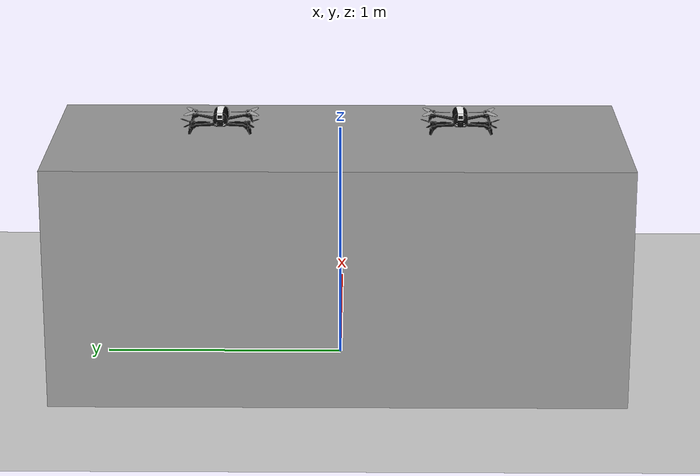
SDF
<sdf version="1.7">
 <world name="default">
  <plugin name="ros_interface_plugin" filename="librotors_gazebo_ros_interface_plugin.so"/>
  <model name="ground_plane">
   <static>1</static>
   <link name="link">
    <collision name="collision">
     <geometry><plane><normal>0 0 1</normal><size>100 100</size></plane></geometry>
     <surface>
      <contact><collide_bitmask>65535</collide_bitmask></contact>
      <friction><ode><mu>100</mu><mu2>50</mu2></ode></friction>
     </surface>
    </collision>
    <visual name="visual">
     <cast_shadows>0</cast_shadows>
     <geometry><plane><normal>0 0 1</normal><size>100 100</size></plane></geometry>
     <material>
      <script><uri>file://media/materials/scripts/gazebo.material</uri><name>Gazebo/Grey</name></script>
     </material>
    </visual>
   </link>
  </model>
  <light name="sun" type="directional">
   <pose>0 0 10 0 -0 0</pose>
   <diffuse>0.8 0.8 0.8 1</diffuse>
   <specular>0.2 0.2 0.2 1</specular>
   <attenuation>
    <range>1000</range>
    <constant>0.9</constant>
    <linear>0.01</linear>
    <quadratic>0.001</quadratic>
   </attenuation>
   <direction>-0.5 0.1 -0.9</direction>
   <spot><inner_angle>0</inner_angle><outer_angle>0</outer_angle><falloff>0</falloff></spot>
  </light>
  <spherical_coordinates>
   <surface_model>EARTH_WGS84</surface_model>
   <latitude_deg>47.3667</latitude_deg>
   <longitude_deg>8.55</longitude_deg>
   <elevation>500</elevation>
   <heading_deg>0</heading_deg>
  </spherical_coordinates>
  <physics type="ode">
   <ode>
    <solver>
     <type>quick</type>
     <iters>1000</iters>
     <sor>1.3</sor>
     <use_dynamic_moi_rescaling>0</use_dynamic_moi_rescaling>
    </solver>
    <constraints>
     <cfm>0</cfm>
     <erp>0.2</erp>
     <contact_max_correcting_vel>100</contact_max_correcting_vel>
     <contact_surface_layer>0.001</contact_surface_layer>
    </constraints>
   </ode>
   <max_step_size>0.01</max_step_size>
   <real_time_factor>1</real_time_factor>
   <real_time_update_rate>100</real_time_update_rate>
  </physics>
  <gravity>0 0 -9.8</gravity>
  <magnetic_field>6e-06 2.3e-05 -4.2e-05</magnetic_field>
  <atmosphere type="adiabatic"/>
  <scene><ambient>0.4 0.4 0.4 1</ambient><background>0.7 0.7 0.7 1</background><shadows>1</shadows></scene>
  <model name="L_bebop2">
   <link name="L_bebop2/base_link">
    <inertial>
     <pose>2e-06 0 0 0 -0 0</pose>
     <mass>0.50301</mass>
     <inertia>
      <ixx>0.001806</ixx>
      <ixy>-8.619e-07</ixy>
      <ixz>1.555e-05</ixz>
      <iyy>0.0017651</iyy>
      <iyz>3.595e-07</iyz>
      <izz>0.0033291</izz>
     </inertia>
    </inertial>
    <collision name="L_bebop2/base_link_inertia_collision">
     <geometry><box><size>0.316618 0.316618 0.089582</size></box></geometry>
    </collision>
    <collision name="L_bebop2/base_link_fixed_joint_lump__L_bebop2/camera_base_link_collision_1">
     <pose>0.1 0 0 0 -0 0</pose>
     <geometry><box><size>0.001 0.001 0.001</size></box></geometry>
    </collision>
    <visual name="L_bebop2/base_link_inertia_visual">
     <geometry>
      <mesh>
       <scale>1 1 1</scale>
       <uri>/home/huss/Bureau/Documents/cat_ws/src/drone_sim/rotors_simulator/rotors_description/meshes/bebop2.dae</uri>
      </mesh>
     </geometry>
    </visual>
    <visual name="L_bebop2/base_link_fixed_joint_lump__L_bebop2/camera_base_link_visual_1">
     <pose>0.1 0 0 3.14159 1.57079 3.14159</pose>
     <geometry><box><size>0.001 0.001 0.001</size></box></geometry>
    </visual>
    <sensor name="L_bebop2_camera_base" type="camera">
     <update_rate>30</update_rate>
     <camera name="head">
      <horizontal_fov>1.7</horizontal_fov>
      <image><width>856</width><height>480</height><format>R8G8B8</format></image>
      <clip><near>0.02</near><far>50</far></clip>
      <noise><type>gaussian</type><mean>0</mean><stddev>0.007</stddev></noise>
     </camera>
     <plugin name="L_bebop2_camera_base_controller" filename="libgazebo_ros_camera.so">
      <robotNamespace>L_bebop2</robotNamespace>
      <alwaysOn>1</alwaysOn>
      <updateRate>30.0</updateRate>
      <cameraName>camera_base</cameraName>
      <imageTopicName>image_raw</imageTopicName>
      <cameraInfoTopicName>camera_info</cameraInfoTopicName>
      <frameName>camera_base_link</frameName>
      <hackBaseline>0.0</hackBaseline>
      <distortionK1>0.0</distortionK1>
      <distortionK2>0.0</distortionK2>
      <distortionK3>0.0</distortionK3>
      <distortionT1>0.0</distortionT1>
      <distortionT2>0.0</distortionT2>
     </plugin>
     <pose>0.1 0 0 0 -0 0</pose>
    </sensor>
   </link>
   <joint name="L_bebop2/imu_joint" type="revolute">
    <pose relative_to="L_bebop2/base_link">0 0 0 0 -0 0</pose>
    <parent>L_bebop2/base_link</parent>
    <child>L_bebop2/imu_link</child>
    <axis>
     <xyz>1 0 0</xyz>
     <limit><lower>0</lower><upper>0</upper><effort>0</effort><velocity>0</velocity></limit>
     <dynamics><spring_reference>0</spring_reference><spring_stiffness>0</spring_stiffness></dynamics>
    </axis>
   </joint>
   <link name="L_bebop2/imu_link">
    <pose relative_to="L_bebop2/imu_joint">0 0 0 0 -0 0</pose>
    <inertial>
     <mass>0.015</mass>
     <inertia><ixx>1e-05</ixx><ixy>0</ixy><ixz>0</ixz><iyy>1e-05</iyy><iyz>0</iyz><izz>1e-05</izz></inertia>
    </inertial>
   </link>
   <joint name="L_bebop2/imugt_joint" type="revolute">
    <pose relative_to="L_bebop2/base_link">0 0 0 0 -0 0</pose>
    <parent>L_bebop2/base_link</parent>
    <child>L_bebop2/imugt_link</child>
    <axis>
     <xyz>1 0 0</xyz>
     <limit><lower>0</lower><upper>0</upper><effort>0</effort><velocity>0</velocity></limit>
     <dynamics><spring_reference>0</spring_reference><spring_stiffness>0</spring_stiffness></dynamics>
    </axis>
   </joint>
   <link name="L_bebop2/imugt_link">
    <pose relative_to="L_bebop2/imugt_joint">0 0 0 0 -0 0</pose>
    <inertial>
     <mass>1e-05</mass>
     <inertia><ixx>1e-05</ixx><ixy>0</ixy><ixz>0</ixz><iyy>1e-05</iyy><iyz>0</iyz><izz>1e-05</izz></inertia>
    </inertial>
   </link>
   <joint name="L_bebop2/odometry_sensor1_joint" type="revolute">
    <pose relative_to="L_bebop2/base_link">0 0 0 0 -0 0</pose>
    <parent>L_bebop2/base_link</parent>
    <child>L_bebop2/odometry_sensor1_link</child>
    <axis>
     <xyz>1 0 0</xyz>
     <limit><lower>0</lower><upper>0</upper><effort>0</effort><velocity>0</velocity></limit>
     <dynamics><spring_reference>0</spring_reference><spring_stiffness>0</spring_stiffness></dynamics>
    </axis>
   </joint>
   <link name="L_bebop2/odometry_sensor1_link">
    <pose relative_to="L_bebop2/odometry_sensor1_joint">0 0 0 0 -0 0</pose>
    <inertial>
     <mass>1e-05</mass>
     <inertia><ixx>1e-05</ixx><ixy>0</ixy><ixz>0</ixz><iyy>1e-05</iyy><iyz>0</iyz><izz>1e-05</izz></inertia>
    </inertial>
   </link>
   <joint name="L_bebop2/odometry_sensorgt_joint" type="revolute">
    <pose relative_to="L_bebop2/base_link">0 0 0 0 -0 0</pose>
    <parent>L_bebop2/base_link</parent>
    <child>L_bebop2/odometry_sensorgt_link</child>
    <axis>
     <xyz>1 0 0</xyz>
     <limit><lower>0</lower><upper>0</upper><effort>0</effort><velocity>0</velocity></limit>
     <dynamics><spring_reference>0</spring_reference><spring_stiffness>0</spring_stiffness></dynamics>
    </axis>
   </joint>
   <link name="L_bebop2/odometry_sensorgt_link">
    <pose relative_to="L_bebop2/odometry_sensorgt_joint">0 0 0 0 -0 0</pose>
    <inertial>
     <mass>1e-05</mass>
     <inertia><ixx>1e-05</ixx><ixy>0</ixy><ixz>0</ixz><iyy>1e-05</iyy><iyz>0</iyz><izz>1e-05</izz></inertia>
    </inertial>
   </link>
   <joint name="L_bebop2/rotor_0_joint" type="revolute">
    <pose relative_to="L_bebop2/base_link">0.08456 -0.11435 -0.00501 0 -0 0</pose>
    <parent>L_bebop2/base_link</parent>
    <child>L_bebop2/rotor_0</child>
    <axis>
     <xyz>0 0 1</xyz>
     <limit><lower>-1e+16</lower><upper>1e+16</upper></limit>
     <dynamics><spring_reference>0</spring_reference><spring_stiffness>0</spring_stiffness></dynamics>
    </axis>
   </joint>
   <link name="L_bebop2/rotor_0">
    <pose relative_to="L_bebop2/rotor_0_joint">0 0 0 0 -0 0</pose>
    <inertial>
     <mass>0.001</mass>
     <inertia>
      <ixx>1.95e-07</ixx>
      <ixy>0</ixy>
      <ixz>0</ixz>
      <iyy>8.34083e-06</iyy>
      <iyz>0</iyz>
      <izz>8.52083e-06</izz>
     </inertia>
    </inertial>
    <collision name="L_bebop2/rotor_0_collision">
     <geometry><cylinder><length>0.005</length><radius>0.1</radius></cylinder></geometry>
    </collision>
    <visual name="L_bebop2/rotor_0_visual">
     <geometry>
      <mesh>
       <scale>1 1 1</scale>
       <uri>/home/huss/Bureau/Documents/cat_ws/src/drone_sim/rotors_simulator/rotors_description/meshes/propeller_fr.dae</uri>
      </mesh>
     </geometry>
     <material>
      <script><name>Gazebo/</name><uri>file://media/materials/scripts/gazebo.material</uri></script>
     </material>
    </visual>
   </link>
   <joint name="L_bebop2/rotor_1_joint" type="revolute">
    <pose relative_to="L_bebop2/base_link">-0.09035 0.11452 -0.00501 0 -0 0</pose>
    <parent>L_bebop2/base_link</parent>
    <child>L_bebop2/rotor_1</child>
    <axis>
     <xyz>0 0 1</xyz>
     <limit><lower>-1e+16</lower><upper>1e+16</upper></limit>
     <dynamics><spring_reference>0</spring_reference><spring_stiffness>0</spring_stiffness></dynamics>
    </axis>
   </joint>
   <link name="L_bebop2/rotor_1">
    <pose relative_to="L_bebop2/rotor_1_joint">0 0 0 0 -0 0</pose>
    <inertial>
     <mass>0.001</mass>
     <inertia>
      <ixx>1.95e-07</ixx>
      <ixy>0</ixy>
      <ixz>0</ixz>
      <iyy>8.34083e-06</iyy>
      <iyz>0</iyz>
      <izz>8.52083e-06</izz>
     </inertia>
    </inertial>
    <collision name="L_bebop2/rotor_1_collision">
     <geometry><cylinder><length>0.005</length><radius>0.1</radius></cylinder></geometry>
    </collision>
    <visual name="L_bebop2/rotor_1_visual">
     <geometry>
      <mesh>
       <scale>1 1 1</scale>
       <uri>/home/huss/Bureau/Documents/cat_ws/src/drone_sim/rotors_simulator/rotors_description/meshes/propeller_rl.dae</uri>
      </mesh>
     </geometry>
     <material>
      <script><name>Gazebo/</name><uri>file://media/materials/scripts/gazebo.material</uri></script>
     </material>
    </visual>
   </link>
   <joint name="L_bebop2/rotor_2_joint" type="revolute">
    <pose relative_to="L_bebop2/base_link">0.08456 0.11463 -0.00501 0 -0 0</pose>
    <parent>L_bebop2/base_link</parent>
    <child>L_bebop2/rotor_2</child>
    <axis>
     <xyz>0 0 1</xyz>
     <limit><lower>-1e+16</lower><upper>1e+16</upper></limit>
     <dynamics><spring_reference>0</spring_reference><spring_stiffness>0</spring_stiffness></dynamics>
    </axis>
   </joint>
   <link name="L_bebop2/rotor_2">
    <pose relative_to="L_bebop2/rotor_2_joint">0 0 0 0 -0 0</pose>
    <inertial>
     <mass>0.001</mass>
     <inertia>
      <ixx>1.95e-07</ixx>
      <ixy>0</ixy>
      <ixz>0</ixz>
      <iyy>8.34083e-06</iyy>
      <iyz>0</iyz>
      <izz>8.52083e-06</izz>
     </inertia>
    </inertial>
    <collision name="L_bebop2/rotor_2_collision">
     <geometry><cylinder><length>0.005</length><radius>0.1</radius></cylinder></geometry>
    </collision>
    <visual name="L_bebop2/rotor_2_visual">
     <geometry>
      <mesh>
       <scale>1 1 1</scale>
       <uri>/home/huss/Bureau/Documents/cat_ws/src/drone_sim/rotors_simulator/rotors_description/meshes/propeller_fl.dae</uri>
      </mesh>
     </geometry>
     <material>
      <script><name>Gazebo/</name><uri>file://media/materials/scripts/gazebo.material</uri></script>
     </material>
    </visual>
   </link>
   <joint name="L_bebop2/rotor_3_joint" type="revolute">
    <pose relative_to="L_bebop2/base_link">-0.09035 -0.11423 -0.00501 0 -0 0</pose>
    <parent>L_bebop2/base_link</parent>
    <child>L_bebop2/rotor_3</child>
    <axis>
     <xyz>0 0 1</xyz>
     <limit><lower>-1e+16</lower><upper>1e+16</upper></limit>
     <dynamics><spring_reference>0</spring_reference><spring_stiffness>0</spring_stiffness></dynamics>
    </axis>
   </joint>
   <link name="L_bebop2/rotor_3">
    <pose relative_to="L_bebop2/rotor_3_joint">0 0 0 0 -0 0</pose>
    <inertial>
     <mass>0.001</mass>
     <inertia>
      <ixx>1.95e-07</ixx>
      <ixy>0</ixy>
      <ixz>0</ixz>
      <iyy>8.34083e-06</iyy>
      <iyz>0</iyz>
      <izz>8.52083e-06</izz>
     </inertia>
    </inertial>
    <collision name="L_bebop2/rotor_3_collision">
     <geometry><cylinder><length>0.005</length><radius>0.1</radius></cylinder></geometry>
    </collision>
    <visual name="L_bebop2/rotor_3_visual">
     <geometry>
      <mesh>
       <scale>1 1 1</scale>
       <uri>/home/huss/Bureau/Documents/cat_ws/src/drone_sim/rotors_simulator/rotors_description/meshes/propeller_rr.dae</uri>
      </mesh>
     </geometry>
     <material>
      <script><name>Gazebo/</name><uri>file://media/materials/scripts/gazebo.material</uri></script>
     </material>
    </visual>
   </link>
   <plugin name="multirotor_base_plugin" filename="librotors_gazebo_multirotor_base_plugin.so">
    <robotNamespace>L_bebop2</robotNamespace>
    <linkName>L_bebop2/base_link</linkName>
    <rotorVelocitySlowdownSim>10</rotorVelocitySlowdownSim>
   </plugin>
   <plugin name="L_bebop2_front_right_motor_model" filename="librotors_gazebo_motor_model.so">
    <robotNamespace>L_bebop2</robotNamespace>
    <jointName>L_bebop2/rotor_0_joint</jointName>
    <linkName>L_bebop2/rotor_0</linkName>
    <turningDirection>ccw</turningDirection>
    <timeConstantUp>0.0125</timeConstantUp>
    <timeConstantDown>0.025</timeConstantDown>
    <maxRotVelocity>838</maxRotVelocity>
    <motorConstant>8.54858e-06</motorConstant>
    <momentConstant>0.016</momentConstant>
    <commandSubTopic>gazebo/command/motor_speed</commandSubTopic>
    <motorNumber>0</motorNumber>
    <rotorDragCoefficient>8.06428e-05</rotorDragCoefficient>
    <rollingMomentCoefficient>1e-06</rollingMomentCoefficient>
    <motorSpeedPubTopic>motor_speed/0</motorSpeedPubTopic>
    <rotorVelocitySlowdownSim>10</rotorVelocitySlowdownSim>
   </plugin>
   <plugin name="L_bebop2_back_left_motor_model" filename="librotors_gazebo_motor_model.so">
    <robotNamespace>L_bebop2</robotNamespace>
    <jointName>L_bebop2/rotor_1_joint</jointName>
    <linkName>L_bebop2/rotor_1</linkName>
    <turningDirection>ccw</turningDirection>
    <timeConstantUp>0.0125</timeConstantUp>
    <timeConstantDown>0.025</timeConstantDown>
    <maxRotVelocity>838</maxRotVelocity>
    <motorConstant>8.54858e-06</motorConstant>
    <momentConstant>0.016</momentConstant>
    <commandSubTopic>gazebo/command/motor_speed</commandSubTopic>
    <motorNumber>1</motorNumber>
    <rotorDragCoefficient>8.06428e-05</rotorDragCoefficient>
    <rollingMomentCoefficient>1e-06</rollingMomentCoefficient>
    <motorSpeedPubTopic>motor_speed/1</motorSpeedPubTopic>
    <rotorVelocitySlowdownSim>10</rotorVelocitySlowdownSim>
   </plugin>
   <plugin name="L_bebop2_front_left_motor_model" filename="librotors_gazebo_motor_model.so">
    <robotNamespace>L_bebop2</robotNamespace>
    <jointName>L_bebop2/rotor_2_joint</jointName>
    <linkName>L_bebop2/rotor_2</linkName>
    <turningDirection>cw</turningDirection>
    <timeConstantUp>0.0125</timeConstantUp>
    <timeConstantDown>0.025</timeConstantDown>
    <maxRotVelocity>838</maxRotVelocity>
    <motorConstant>8.54858e-06</motorConstant>
    <momentConstant>0.016</momentConstant>
    <commandSubTopic>gazebo/command/motor_speed</commandSubTopic>
    <motorNumber>2</motorNumber>
    <rotorDragCoefficient>8.06428e-05</rotorDragCoefficient>
    <rollingMomentCoefficient>1e-06</rollingMomentCoefficient>
    <motorSpeedPubTopic>motor_speed/2</motorSpeedPubTopic>
    <rotorVelocitySlowdownSim>10</rotorVelocitySlowdownSim>
   </plugin>
   <plugin name="L_bebop2_back_right_motor_model" filename="librotors_gazebo_motor_model.so">
    <robotNamespace>L_bebop2</robotNamespace>
    <jointName>L_bebop2/rotor_3_joint</jointName>
    <linkName>L_bebop2/rotor_3</linkName>
    <turningDirection>cw</turningDirection>
    <timeConstantUp>0.0125</timeConstantUp>
    <timeConstantDown>0.025</timeConstantDown>
    <maxRotVelocity>838</maxRotVelocity>
    <motorConstant>8.54858e-06</motorConstant>
    <momentConstant>0.016</momentConstant>
    <commandSubTopic>gazebo/command/motor_speed</commandSubTopic>
    <motorNumber>3</motorNumber>
    <rotorDragCoefficient>8.06428e-05</rotorDragCoefficient>
    <rollingMomentCoefficient>1e-06</rollingMomentCoefficient>
    <motorSpeedPubTopic>motor_speed/3</motorSpeedPubTopic>
    <rotorVelocitySlowdownSim>10</rotorVelocitySlowdownSim>
   </plugin>
   <plugin name="controller_interface" filename="librotors_gazebo_controller_interface.so">
    <robotNamespace>L_bebop2</robotNamespace>
    <commandAttitudeThrustSubTopic>command/attitude</commandAttitudeThrustSubTopic>
    <commandRateThrustSubTopic>command/rate</commandRateThrustSubTopic>
    <commandMotorSpeedSubTopic>command/motor_speed</commandMotorSpeedSubTopic>
    <imuSubTopic>imu</imuSubTopic>
    <motorSpeedCommandPubTopic>gazebo/command/motor_speed</motorSpeedCommandPubTopic>
   </plugin>
   <plugin name="rotors_gazebo_imu_plugin" filename="librotors_gazebo_imu_plugin.so">
    <robotNamespace>L_bebop2</robotNamespace>
    <linkName>L_bebop2/imu_link</linkName>
    <imuTopic>imu</imuTopic>
    <gyroscopeNoiseDensity>0.0003394</gyroscopeNoiseDensity>
    <gyroscopeRandomWalk>3.8785e-05</gyroscopeRandomWalk>
    <gyroscopeBiasCorrelationTime>1000.0</gyroscopeBiasCorrelationTime>
    <gyroscopeTurnOnBiasSigma>0.0087</gyroscopeTurnOnBiasSigma>
    <accelerometerNoiseDensity>0.004</accelerometerNoiseDensity>
    <accelerometerRandomWalk>0.006</accelerometerRandomWalk>
    <accelerometerBiasCorrelationTime>300.0</accelerometerBiasCorrelationTime>
    <accelerometerTurnOnBiasSigma>0.196</accelerometerTurnOnBiasSigma>
   </plugin>
   <plugin name="rotors_gazebo_imugt_plugin" filename="librotors_gazebo_imu_plugin.so">
    <robotNamespace>L_bebop2</robotNamespace>
    <linkName>L_bebop2/imugt_link</linkName>
    <imuTopic>ground_truth/imu</imuTopic>
    <gyroscopeNoiseDensity>0.0</gyroscopeNoiseDensity>
    <gyroscopeRandomWalk>0.0</gyroscopeRandomWalk>
    <gyroscopeBiasCorrelationTime>1000.0</gyroscopeBiasCorrelationTime>
    <gyroscopeTurnOnBiasSigma>0.0</gyroscopeTurnOnBiasSigma>
    <accelerometerNoiseDensity>0.0</accelerometerNoiseDensity>
    <accelerometerRandomWalk>0.0</accelerometerRandomWalk>
    <accelerometerBiasCorrelationTime>300.0</accelerometerBiasCorrelationTime>
    <accelerometerTurnOnBiasSigma>0.0</accelerometerTurnOnBiasSigma>
   </plugin>
   <plugin name="odometry_sensorgt" filename="librotors_gazebo_odometry_plugin.so">
    <linkName>L_bebop2/odometry_sensorgt_link</linkName>
    <robotNamespace>L_bebop2</robotNamespace>
    <poseTopic>ground_truth/pose</poseTopic>
    <poseWithCovarianceTopic>ground_truth/pose_with_covariance</poseWithCovarianceTopic>
    <positionTopic>ground_truth/position</positionTopic>
    <transformTopic>ground_truth/transform</transformTopic>
    <odometryTopic>ground_truth/odometry</odometryTopic>
    <parentFrameId>world</parentFrameId>
    <childFrameId>L_bebop2/base_link</childFrameId>
    <measurementDivisor>1</measurementDivisor>
    <measurementDelay>0</measurementDelay>
    <unknownDelay>0.0</unknownDelay>
    <noiseNormalPosition>0 0 0</noiseNormalPosition>
    <noiseNormalQuaternion>0 0 0</noiseNormalQuaternion>
    <noiseNormalLinearVelocity>0 0 0</noiseNormalLinearVelocity>
    <noiseNormalAngularVelocity>0 0 0</noiseNormalAngularVelocity>
    <noiseUniformPosition>0 0 0</noiseUniformPosition>
    <noiseUniformQuaternion>0 0 0</noiseUniformQuaternion>
    <noiseUniformLinearVelocity>0 0 0</noiseUniformLinearVelocity>
    <noiseUniformAngularVelocity>0 0 0</noiseUniformAngularVelocity>
   </plugin>
   <static>0</static>
   <plugin name="odometry_sensor1" filename="librotors_gazebo_odometry_plugin.so">
    <linkName>L_bebop2/odometry_sensor1_link</linkName>
    <robotNamespace>L_bebop2</robotNamespace>
    <poseTopic>odometry_sensor1/pose</poseTopic>
    <poseWithCovarianceTopic>odometry_sensor1/pose_with_covariance</poseWithCovarianceTopic>
    <positionTopic>odometry_sensor1/position</positionTopic>
    <transformTopic>odometry_sensor1/transform</transformTopic>
    <odometryTopic>odometry_sensor1/odometry</odometryTopic>
    <parentFrameId>world</parentFrameId>
    <childFrameId>L_bebop2/odometry_sensor1</childFrameId>
    <measurementDivisor>1</measurementDivisor>
    <measurementDelay>0</measurementDelay>
    <unknownDelay>0.0</unknownDelay>
    <noiseNormalPosition>0.015 0.015 0.015</noiseNormalPosition>
    <noiseNormalQuaternion>0.001 0.001 0.001</noiseNormalQuaternion>
    <noiseNormalLinearVelocity>0.001 0.001 0.001</noiseNormalLinearVelocity>
    <noiseNormalAngularVelocity>0.001 0.001 0.001</noiseNormalAngularVelocity>
    <noiseUniformPosition>0 0 0</noiseUniformPosition>
    <noiseUniformQuaternion>0 0 0</noiseUniformQuaternion>
    <noiseUniformLinearVelocity>0 0 0</noiseUniformLinearVelocity>
    <noiseUniformAngularVelocity>0 0 0</noiseUniformAngularVelocity>
    <covarianceImage>/home/huss/Bureau/Documents/cat_ws/src/drone_sim/rotors_simulator/rotors_gazebo/resource/map</covarianceImage>
   </plugin>
   <pose>-0 -0.5 1.04479 0 -0 0</pose>
  </model>
  <model name="R_bebop2">
   <link name="R_bebop2/base_link">
    <inertial>
     <pose>2e-06 0 0 0 -0 0</pose>
     <mass>0.50301</mass>
     <inertia>
      <ixx>0.001806</ixx>
      <ixy>-8.619e-07</ixy>
      <ixz>1.555e-05</ixz>
      <iyy>0.0017651</iyy>
      <iyz>3.595e-07</iyz>
      <izz>0.0033291</izz>
     </inertia>
    </inertial>
    <collision name="R_bebop2/base_link_inertia_collision">
     <geometry><box><size>0.316618 0.316618 0.089582</size></box></geometry>
    </collision>
    <collision name="R_bebop2/base_link_fixed_joint_lump__R_bebop2/camera_base_link_collision_1">
     <pose>0.1 0 0 0 -0 0</pose>
     <geometry><box><size>0.001 0.001 0.001</size></box></geometry>
    </collision>
    <visual name="R_bebop2/base_link_inertia_visual">
     <geometry>
      <mesh>
       <scale>1 1 1</scale>
       <uri>/home/huss/Bureau/Documents/cat_ws/src/drone_sim/rotors_simulator/rotors_description/meshes/bebop2.dae</uri>
      </mesh>
     </geometry>
    </visual>
    <visual name="R_bebop2/base_link_fixed_joint_lump__R_bebop2/camera_base_link_visual_1">
     <pose>0.1 0 0 3.14159 1.57079 3.14159</pose>
     <geometry><box><size>0.001 0.001 0.001</size></box></geometry>
    </visual>
    <sensor name="R_bebop2_camera_base" type="camera">
     <update_rate>30</update_rate>
     <camera name="head">
      <horizontal_fov>1.7</horizontal_fov>
      <image><width>856</width><height>480</height><format>R8G8B8</format></image>
      <clip><near>0.02</near><far>50</far></clip>
      <noise><type>gaussian</type><mean>0</mean><stddev>0.007</stddev></noise>
     </camera>
     <plugin name="R_bebop2_camera_base_controller" filename="libgazebo_ros_camera.so">
      <robotNamespace>R_bebop2</robotNamespace>
      <alwaysOn>1</alwaysOn>
      <updateRate>30.0</updateRate>
      <cameraName>camera_base</cameraName>
      <imageTopicName>image_raw</imageTopicName>
      <cameraInfoTopicName>camera_info</cameraInfoTopicName>
      <frameName>camera_base_link</frameName>
      <hackBaseline>0.0</hackBaseline>
      <distortionK1>0.0</distortionK1>
      <distortionK2>0.0</distortionK2>
      <distortionK3>0.0</distortionK3>
      <distortionT1>0.0</distortionT1>
      <distortionT2>0.0</distortionT2>
     </plugin>
     <pose>0.1 0 0 0 -0 0</pose>
    </sensor>
   </link>
   <joint name="R_bebop2/imu_joint" type="revolute">
    <pose relative_to="R_bebop2/base_link">0 0 0 0 -0 0</pose>
    <parent>R_bebop2/base_link</parent>
    <child>R_bebop2/imu_link</child>
    <axis>
     <xyz>1 0 0</xyz>
     <limit><lower>0</lower><upper>0</upper><effort>0</effort><velocity>0</velocity></limit>
     <dynamics><spring_reference>0</spring_reference><spring_stiffness>0</spring_stiffness></dynamics>
    </axis>
   </joint>
   <link name="R_bebop2/imu_link">
    <pose relative_to="R_bebop2/imu_joint">0 0 0 0 -0 0</pose>
    <inertial>
     <mass>0.015</mass>
     <inertia><ixx>1e-05</ixx><ixy>0</ixy><ixz>0</ixz><iyy>1e-05</iyy><iyz>0</iyz><izz>1e-05</izz></inertia>
    </inertial>
   </link>
   <joint name="R_bebop2/imugt_joint" type="revolute">
    <pose relative_to="R_bebop2/base_link">0 0 0 0 -0 0</pose>
    <parent>R_bebop2/base_link</parent>
    <child>R_bebop2/imugt_link</child>
    <axis>
     <xyz>1 0 0</xyz>
     <limit><lower>0</lower><upper>0</upper><effort>0</effort><velocity>0</velocity></limit>
     <dynamics><spring_reference>0</spring_reference><spring_stiffness>0</spring_stiffness></dynamics>
    </axis>
   </joint>
   <link name="R_bebop2/imugt_link">
    <pose relative_to="R_bebop2/imugt_joint">0 0 0 0 -0 0</pose>
    <inertial>
     <mass>1e-05</mass>
     <inertia><ixx>1e-05</ixx><ixy>0</ixy><ixz>0</ixz><iyy>1e-05</iyy><iyz>0</iyz><izz>1e-05</izz></inertia>
    </inertial>
   </link>
   <joint name="R_bebop2/odometry_sensor1_joint" type="revolute">
    <pose relative_to="R_bebop2/base_link">0 0 0 0 -0 0</pose>
    <parent>R_bebop2/base_link</parent>
    <child>R_bebop2/odometry_sensor1_link</child>
    <axis>
     <xyz>1 0 0</xyz>
     <limit><lower>0</lower><upper>0</upper><effort>0</effort><velocity>0</velocity></limit>
     <dynamics><spring_reference>0</spring_reference><spring_stiffness>0</spring_stiffness></dynamics>
    </axis>
   </joint>
   <link name="R_bebop2/odometry_sensor1_link">
    <pose relative_to="R_bebop2/odometry_sensor1_joint">0 0 0 0 -0 0</pose>
    <inertial>
     <mass>1e-05</mass>
     <inertia><ixx>1e-05</ixx><ixy>0</ixy><ixz>0</ixz><iyy>1e-05</iyy><iyz>0</iyz><izz>1e-05</izz></inertia>
    </inertial>
   </link>
   <joint name="R_bebop2/odometry_sensorgt_joint" type="revolute">
    <pose relative_to="R_bebop2/base_link">0 0 0 0 -0 0</pose>
    <parent>R_bebop2/base_link</parent>
    <child>R_bebop2/odometry_sensorgt_link</child>
    <axis>
     <xyz>1 0 0</xyz>
     <limit><lower>0</lower><upper>0</upper><effort>0</effort><velocity>0</velocity></limit>
     <dynamics><spring_reference>0</spring_reference><spring_stiffness>0</spring_stiffness></dynamics>
    </axis>
   </joint>
   <link name="R_bebop2/odometry_sensorgt_link">
    <pose relative_to="R_bebop2/odometry_sensorgt_joint">0 0 0 0 -0 0</pose>
    <inertial>
     <mass>1e-05</mass>
     <inertia><ixx>1e-05</ixx><ixy>0</ixy><ixz>0</ixz><iyy>1e-05</iyy><iyz>0</iyz><izz>1e-05</izz></inertia>
    </inertial>
   </link>
   <joint name="R_bebop2/rotor_0_joint" type="revolute">
    <pose relative_to="R_bebop2/base_link">0.08456 -0.11435 -0.00501 0 -0 0</pose>
    <parent>R_bebop2/base_link</parent>
    <child>R_bebop2/rotor_0</child>
    <axis>
     <xyz>0 0 1</xyz>
     <limit><lower>-1e+16</lower><upper>1e+16</upper></limit>
     <dynamics><spring_reference>0</spring_reference><spring_stiffness>0</spring_stiffness></dynamics>
    </axis>
   </joint>
   <link name="R_bebop2/rotor_0">
    <pose relative_to="R_bebop2/rotor_0_joint">0 0 0 0 -0 0</pose>
    <inertial>
     <mass>0.001</mass>
     <inertia>
      <ixx>1.95e-07</ixx>
      <ixy>0</ixy>
      <ixz>0</ixz>
      <iyy>8.34083e-06</iyy>
      <iyz>0</iyz>
      <izz>8.52083e-06</izz>
     </inertia>
    </inertial>
    <collision name="R_bebop2/rotor_0_collision">
     <geometry><cylinder><length>0.005</length><radius>0.1</radius></cylinder></geometry>
    </collision>
    <visual name="R_bebop2/rotor_0_visual">
     <geometry>
      <mesh>
       <scale>1 1 1</scale>
       <uri>/home/huss/Bureau/Documents/cat_ws/src/drone_sim/rotors_simulator/rotors_description/meshes/propeller_fr.dae</uri>
      </mesh>
     </geometry>
     <material>
      <script><name>Gazebo/</name><uri>file://media/materials/scripts/gazebo.material</uri></script>
     </material>
    </visual>
   </link>
   <joint name="R_bebop2/rotor_1_joint" type="revolute">
    <pose relative_to="R_bebop2/base_link">-0.09035 0.11452 -0.00501 0 -0 0</pose>
    <parent>R_bebop2/base_link</parent>
    <child>R_bebop2/rotor_1</child>
    <axis>
     <xyz>0 0 1</xyz>
     <limit><lower>-1e+16</lower><upper>1e+16</upper></limit>
     <dynamics><spring_reference>0</spring_reference><spring_stiffness>0</spring_stiffness></dynamics>
    </axis>
   </joint>
   <link name="R_bebop2/rotor_1">
    <pose relative_to="R_bebop2/rotor_1_joint">0 0 0 0 -0 0</pose>
    <inertial>
     <mass>0.001</mass>
     <inertia>
      <ixx>1.95e-07</ixx>
      <ixy>0</ixy>
      <ixz>0</ixz>
      <iyy>8.34083e-06</iyy>
      <iyz>0</iyz>
      <izz>8.52083e-06</izz>
     </inertia>
    </inertial>
    <collision name="R_bebop2/rotor_1_collision">
     <geometry><cylinder><length>0.005</length><radius>0.1</radius></cylinder></geometry>
    </collision>
    <visual name="R_bebop2/rotor_1_visual">
     <geometry>
      <mesh>
       <scale>1 1 1</scale>
       <uri>/home/huss/Bureau/Documents/cat_ws/src/drone_sim/rotors_simulator/rotors_description/meshes/propeller_rl.dae</uri>
      </mesh>
     </geometry>
     <material>
      <script><name>Gazebo/</name><uri>file://media/materials/scripts/gazebo.material</uri></script>
     </material>
    </visual>
   </link>
   <joint name="R_bebop2/rotor_2_joint" type="revolute">
    <pose relative_to="R_bebop2/base_link">0.08456 0.11463 -0.00501 0 -0 0</pose>
    <parent>R_bebop2/base_link</parent>
    <child>R_bebop2/rotor_2</child>
    <axis>
     <xyz>0 0 1</xyz>
     <limit><lower>-1e+16</lower><upper>1e+16</upper></limit>
     <dynamics><spring_reference>0</spring_reference><spring_stiffness>0</spring_stiffness></dynamics>
    </axis>
   </joint>
   <link name="R_bebop2/rotor_2">
    <pose relative_to="R_bebop2/rotor_2_joint">0 0 0 0 -0 0</pose>
    <inertial>
     <mass>0.001</mass>
     <inertia>
      <ixx>1.95e-07</ixx>
      <ixy>0</ixy>
      <ixz>0</ixz>
      <iyy>8.34083e-06</iyy>
      <iyz>0</iyz>
      <izz>8.52083e-06</izz>
     </inertia>
    </inertial>
    <collision name="R_bebop2/rotor_2_collision">
     <geometry><cylinder><length>0.005</length><radius>0.1</radius></cylinder></geometry>
    </collision>
    <visual name="R_bebop2/rotor_2_visual">
     <geometry>
      <mesh>
       <scale>1 1 1</scale>
       <uri>/home/huss/Bureau/Documents/cat_ws/src/drone_sim/rotors_simulator/rotors_description/meshes/propeller_fl.dae</uri>
      </mesh>
     </geometry>
     <material>
      <script><name>Gazebo/</name><uri>file://media/materials/scripts/gazebo.material</uri></script>
     </material>
    </visual>
   </link>
   <joint name="R_bebop2/rotor_3_joint" type="revolute">
    <pose relative_to="R_bebop2/base_link">-0.09035 -0.11423 -0.00501 0 -0 0</pose>
    <parent>R_bebop2/base_link</parent>
    <child>R_bebop2/rotor_3</child>
    <axis>
     <xyz>0 0 1</xyz>
     <limit><lower>-1e+16</lower><upper>1e+16</upper></limit>
     <dynamics><spring_reference>0</spring_reference><spring_stiffness>0</spring_stiffness></dynamics>
    </axis>
   </joint>
   <link name="R_bebop2/rotor_3">
    <pose relative_to="R_bebop2/rotor_3_joint">0 0 0 0 -0 0</pose>
    <inertial>
     <mass>0.001</mass>
     <inertia>
      <ixx>1.95e-07</ixx>
      <ixy>0</ixy>
      <ixz>0</ixz>
      <iyy>8.34083e-06</iyy>
      <iyz>0</iyz>
      <izz>8.52083e-06</izz>
     </inertia>
    </inertial>
    <collision name="R_bebop2/rotor_3_collision">
     <geometry><cylinder><length>0.005</length><radius>0.1</radius></cylinder></geometry>
    </collision>
    <visual name="R_bebop2/rotor_3_visual">
     <geometry>
      <mesh>
       <scale>1 1 1</scale>
       <uri>/home/huss/Bureau/Documents/cat_ws/src/drone_sim/rotors_simulator/rotors_description/meshes/propeller_rr.dae</uri>
      </mesh>
     </geometry>
     <material>
      <script><name>Gazebo/</name><uri>file://media/materials/scripts/gazebo.material</uri></script>
     </material>
    </visual>
   </link>
   <plugin name="multirotor_base_plugin" filename="librotors_gazebo_multirotor_base_plugin.so">
    <robotNamespace>R_bebop2</robotNamespace>
    <linkName>R_bebop2/base_link</linkName>
    <rotorVelocitySlowdownSim>10</rotorVelocitySlowdownSim>
   </plugin>
   <plugin name="R_bebop2_front_right_motor_model" filename="librotors_gazebo_motor_model.so">
    <robotNamespace>R_bebop2</robotNamespace>
    <jointName>R_bebop2/rotor_0_joint</jointName>
    <linkName>R_bebop2/rotor_0</linkName>
    <turningDirection>ccw</turningDirection>
    <timeConstantUp>0.0125</timeConstantUp>
    <timeConstantDown>0.025</timeConstantDown>
    <maxRotVelocity>838</maxRotVelocity>
    <motorConstant>8.54858e-06</motorConstant>
    <momentConstant>0.016</momentConstant>
    <commandSubTopic>gazebo/command/motor_speed</commandSubTopic>
    <motorNumber>0</motorNumber>
    <rotorDragCoefficient>8.06428e-05</rotorDragCoefficient>
    <rollingMomentCoefficient>1e-06</rollingMomentCoefficient>
    <motorSpeedPubTopic>motor_speed/0</motorSpeedPubTopic>
    <rotorVelocitySlowdownSim>10</rotorVelocitySlowdownSim>
   </plugin>
   <plugin name="R_bebop2_back_left_motor_model" filename="librotors_gazebo_motor_model.so">
    <robotNamespace>R_bebop2</robotNamespace>
    <jointName>R_bebop2/rotor_1_joint</jointName>
    <linkName>R_bebop2/rotor_1</linkName>
    <turningDirection>ccw</turningDirection>
    <timeConstantUp>0.0125</timeConstantUp>
    <timeConstantDown>0.025</timeConstantDown>
    <maxRotVelocity>838</maxRotVelocity>
    <motorConstant>8.54858e-06</motorConstant>
    <momentConstant>0.016</momentConstant>
    <commandSubTopic>gazebo/command/motor_speed</commandSubTopic>
    <motorNumber>1</motorNumber>
    <rotorDragCoefficient>8.06428e-05</rotorDragCoefficient>
    <rollingMomentCoefficient>1e-06</rollingMomentCoefficient>
    <motorSpeedPubTopic>motor_speed/1</motorSpeedPubTopic>
    <rotorVelocitySlowdownSim>10</rotorVelocitySlowdownSim>
   </plugin>
   <plugin name="R_bebop2_front_left_motor_model" filename="librotors_gazebo_motor_model.so">
    <robotNamespace>R_bebop2</robotNamespace>
    <jointName>R_bebop2/rotor_2_joint</jointName>
    <linkName>R_bebop2/rotor_2</linkName>
    <turningDirection>cw</turningDirection>
    <timeConstantUp>0.0125</timeConstantUp>
    <timeConstantDown>0.025</timeConstantDown>
    <maxRotVelocity>838</maxRotVelocity>
    <motorConstant>8.54858e-06</motorConstant>
    <momentConstant>0.016</momentConstant>
    <commandSubTopic>gazebo/command/motor_speed</commandSubTopic>
    <motorNumber>2</motorNumber>
    <rotorDragCoefficient>8.06428e-05</rotorDragCoefficient>
    <rollingMomentCoefficient>1e-06</rollingMomentCoefficient>
    <motorSpeedPubTopic>motor_speed/2</motorSpeedPubTopic>
    <rotorVelocitySlowdownSim>10</rotorVelocitySlowdownSim>
   </plugin>
   <plugin name="R_bebop2_back_right_motor_model" filename="librotors_gazebo_motor_model.so">
    <robotNamespace>R_bebop2</robotNamespace>
    <jointName>R_bebop2/rotor_3_joint</jointName>
    <linkName>R_bebop2/rotor_3</linkName>
    <turningDirection>cw</turningDirection>
    <timeConstantUp>0.0125</timeConstantUp>
    <timeConstantDown>0.025</timeConstantDown>
    <maxRotVelocity>838</maxRotVelocity>
    <motorConstant>8.54858e-06</motorConstant>
    <momentConstant>0.016</momentConstant>
    <commandSubTopic>gazebo/command/motor_speed</commandSubTopic>
    <motorNumber>3</motorNumber>
    <rotorDragCoefficient>8.06428e-05</rotorDragCoefficient>
    <rollingMomentCoefficient>1e-06</rollingMomentCoefficient>
    <motorSpeedPubTopic>motor_speed/3</motorSpeedPubTopic>
    <rotorVelocitySlowdownSim>10</rotorVelocitySlowdownSim>
   </plugin>
   <plugin name="controller_interface" filename="librotors_gazebo_controller_interface.so">
    <robotNamespace>R_bebop2</robotNamespace>
    <commandAttitudeThrustSubTopic>command/attitude</commandAttitudeThrustSubTopic>
    <commandRateThrustSubTopic>command/rate</commandRateThrustSubTopic>
    <commandMotorSpeedSubTopic>command/motor_speed</commandMotorSpeedSubTopic>
    <imuSubTopic>imu</imuSubTopic>
    <motorSpeedCommandPubTopic>gazebo/command/motor_speed</motorSpeedCommandPubTopic>
   </plugin>
   <plugin name="rotors_gazebo_imu_plugin" filename="librotors_gazebo_imu_plugin.so">
    <robotNamespace>R_bebop2</robotNamespace>
    <linkName>R_bebop2/imu_link</linkName>
    <imuTopic>imu</imuTopic>
    <gyroscopeNoiseDensity>0.0003394</gyroscopeNoiseDensity>
    <gyroscopeRandomWalk>3.8785e-05</gyroscopeRandomWalk>
    <gyroscopeBiasCorrelationTime>1000.0</gyroscopeBiasCorrelationTime>
    <gyroscopeTurnOnBiasSigma>0.0087</gyroscopeTurnOnBiasSigma>
    <accelerometerNoiseDensity>0.004</accelerometerNoiseDensity>
    <accelerometerRandomWalk>0.006</accelerometerRandomWalk>
    <accelerometerBiasCorrelationTime>300.0</accelerometerBiasCorrelationTime>
    <accelerometerTurnOnBiasSigma>0.196</accelerometerTurnOnBiasSigma>
   </plugin>
   <plugin name="rotors_gazebo_imugt_plugin" filename="librotors_gazebo_imu_plugin.so">
    <robotNamespace>R_bebop2</robotNamespace>
    <linkName>R_bebop2/imugt_link</linkName>
    <imuTopic>ground_truth/imu</imuTopic>
    <gyroscopeNoiseDensity>0.0</gyroscopeNoiseDensity>
    <gyroscopeRandomWalk>0.0</gyroscopeRandomWalk>
    <gyroscopeBiasCorrelationTime>1000.0</gyroscopeBiasCorrelationTime>
    <gyroscopeTurnOnBiasSigma>0.0</gyroscopeTurnOnBiasSigma>
    <accelerometerNoiseDensity>0.0</accelerometerNoiseDensity>
    <accelerometerRandomWalk>0.0</accelerometerRandomWalk>
    <accelerometerBiasCorrelationTime>300.0</accelerometerBiasCorrelationTime>
    <accelerometerTurnOnBiasSigma>0.0</accelerometerTurnOnBiasSigma>
   </plugin>
   <plugin name="odometry_sensorgt" filename="librotors_gazebo_odometry_plugin.so">
    <linkName>R_bebop2/odometry_sensorgt_link</linkName>
    <robotNamespace>R_bebop2</robotNamespace>
    <poseTopic>ground_truth/pose</poseTopic>
    <poseWithCovarianceTopic>ground_truth/pose_with_covariance</poseWithCovarianceTopic>
    <positionTopic>ground_truth/position</positionTopic>
    <transformTopic>ground_truth/transform</transformTopic>
    <odometryTopic>ground_truth/odometry</odometryTopic>
    <parentFrameId>world</parentFrameId>
    <childFrameId>R_bebop2/base_link</childFrameId>
    <measurementDivisor>1</measurementDivisor>
    <measurementDelay>0</measurementDelay>
    <unknownDelay>0.0</unknownDelay>
    <noiseNormalPosition>0 0 0</noiseNormalPosition>
    <noiseNormalQuaternion>0 0 0</noiseNormalQuaternion>
    <noiseNormalLinearVelocity>0 0 0</noiseNormalLinearVelocity>
    <noiseNormalAngularVelocity>0 0 0</noiseNormalAngularVelocity>
    <noiseUniformPosition>0 0 0</noiseUniformPosition>
    <noiseUniformQuaternion>0 0 0</noiseUniformQuaternion>
    <noiseUniformLinearVelocity>0 0 0</noiseUniformLinearVelocity>
    <noiseUniformAngularVelocity>0 0 0</noiseUniformAngularVelocity>
   </plugin>
   <static>0</static>
   <plugin name="odometry_sensor1" filename="librotors_gazebo_odometry_plugin.so">
    <linkName>R_bebop2/odometry_sensor1_link</linkName>
    <robotNamespace>R_bebop2</robotNamespace>
    <poseTopic>odometry_sensor1/pose</poseTopic>
    <poseWithCovarianceTopic>odometry_sensor1/pose_with_covariance</poseWithCovarianceTopic>
    <positionTopic>odometry_sensor1/position</positionTopic>
    <transformTopic>odometry_sensor1/transform</transformTopic>
    <odometryTopic>odometry_sensor1/odometry</odometryTopic>
    <parentFrameId>world</parentFrameId>
    <childFrameId>R_bebop2/odometry_sensor1</childFrameId>
    <measurementDivisor>1</measurementDivisor>
    <measurementDelay>0</measurementDelay>
    <unknownDelay>0.0</unknownDelay>
    <noiseNormalPosition>0.015 0.015 0.015</noiseNormalPosition>
    <noiseNormalQuaternion>0.001 0.001 0.001</noiseNormalQuaternion>
    <noiseNormalLinearVelocity>0.001 0.001 0.001</noiseNormalLinearVelocity>
    <noiseNormalAngularVelocity>0.001 0.001 0.001</noiseNormalAngularVelocity>
    <noiseUniformPosition>0 0 0</noiseUniformPosition>
    <noiseUniformQuaternion>0 0 0</noiseUniformQuaternion>
    <noiseUniformLinearVelocity>0 0 0</noiseUniformLinearVelocity>
    <noiseUniformAngularVelocity>0 0 0</noiseUniformAngularVelocity>
    <covarianceImage>/home/huss/Bureau/Documents/cat_ws/src/drone_sim/rotors_simulator/rotors_gazebo/resource/map</covarianceImage>
   </plugin>
   <pose>-0 0.5 1.04479 0 -0 0</pose>
  </model>
  <model name="unit_box">
   <pose>-0.137532 0.007815 0.5 0 -0 0</pose>
   <link name="link">
    <inertial>
     <mass>1</mass>
     <inertia>
      <ixx>0.166667</ixx>
      <ixy>0</ixy>
      <ixz>0</ixz>
      <iyy>0.166667</iyy>
      <iyz>0</iyz>
      <izz>0.166667</izz>
     </inertia>
    </inertial>
    <collision name="collision"><geometry><box><size>1 2.35803 1</size></box></geometry></collision>
    <visual name="visual">
     <geometry><box><size>1 2.35803 1</size></box></geometry>
     <material>
      <script><name>Gazebo/Grey</name><uri>file://media/materials/scripts/gazebo.material</uri></script>
     </material>
    </visual>
    <kinematic>1</kinematic>
   </link>
  </model>
 </world>
</sdf>
